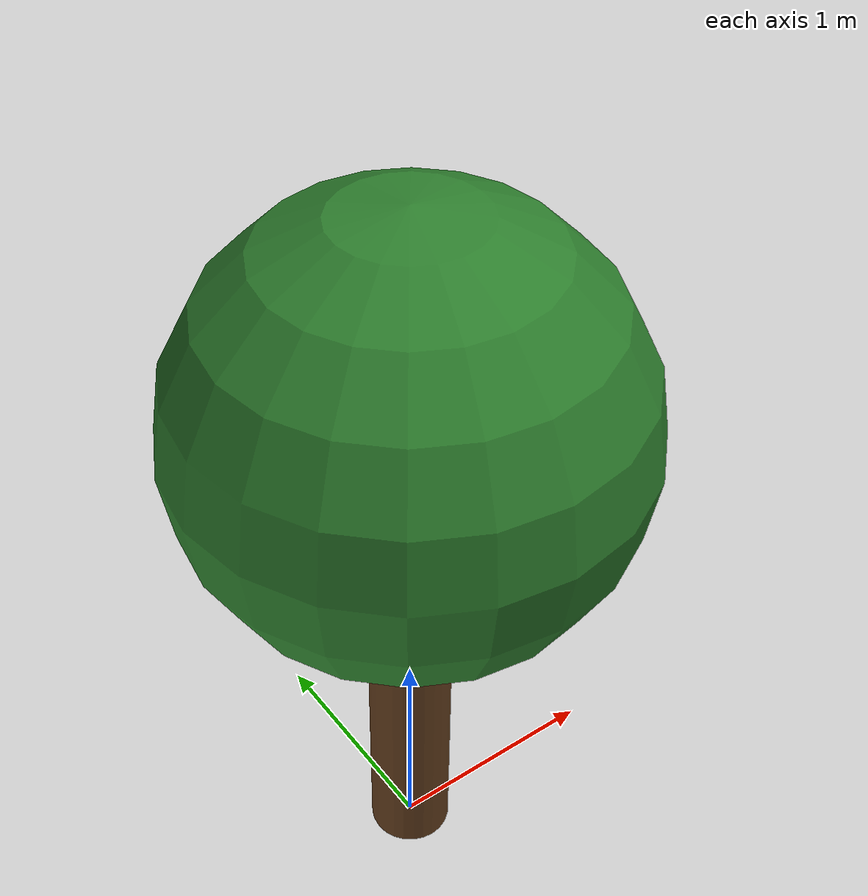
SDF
<?xml version="1.0" ?>
<sdf version="1.9">
  <model name="simple_tree">
    <static>true</static>
    <link name="link">
      <collision name="trunk_collision">
        <pose>0 0 1.0 0 0 0</pose>
        <geometry>
          <cylinder>
            <radius>0.18</radius>
            <length>2.0</length>
          </cylinder>
        </geometry>
      </collision>

      <visual name="trunk_visual">
        <pose>0 0 1.0 0 0 0</pose>
        <geometry>
          <cylinder>
            <radius>0.18</radius>
            <length>2.0</length>
          </cylinder>
        </geometry>
        <material>
          <ambient>0.35 0.22 0.10 1.0</ambient>
          <diffuse>0.40 0.25 0.12 1.0</diffuse>
        </material>
      </visual>

      <collision name="canopy_collision">
        <pose>0 0 2.35 0 0 0</pose>
        <geometry>
          <sphere>
            <radius>0.95</radius>
          </sphere>
        </geometry>
      </collision>

      <visual name="canopy_visual">
        <pose>0 0 2.35 0 0 0</pose>
        <geometry>
          <sphere>
            <radius>0.95</radius>
          </sphere>
        </geometry>
        <material>
          <ambient>0.12 0.35 0.12 1.0</ambient>
          <diffuse>0.18 0.50 0.18 1.0</diffuse>
        </material>
      </visual>
    </link>
  </model>
</sdf>
